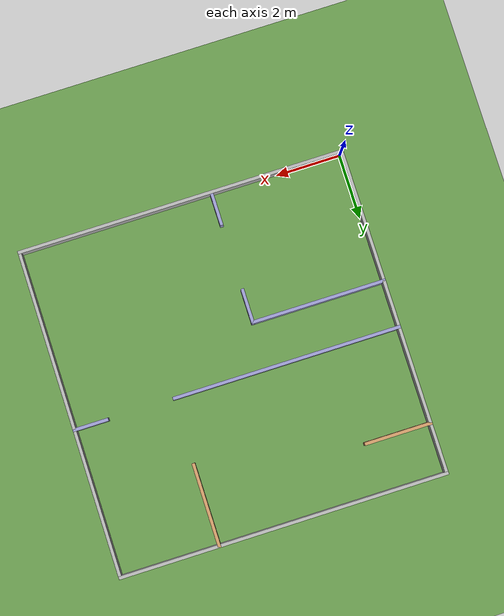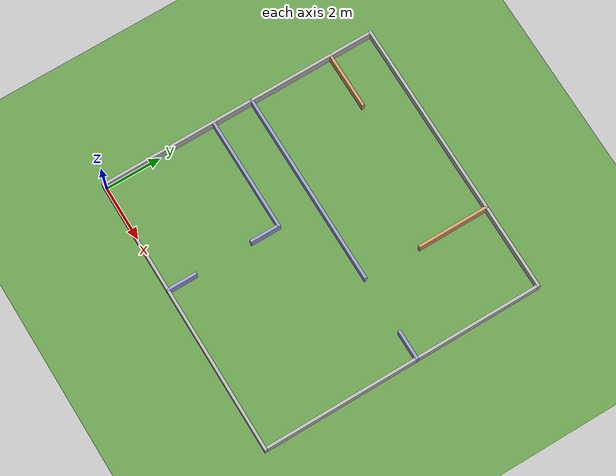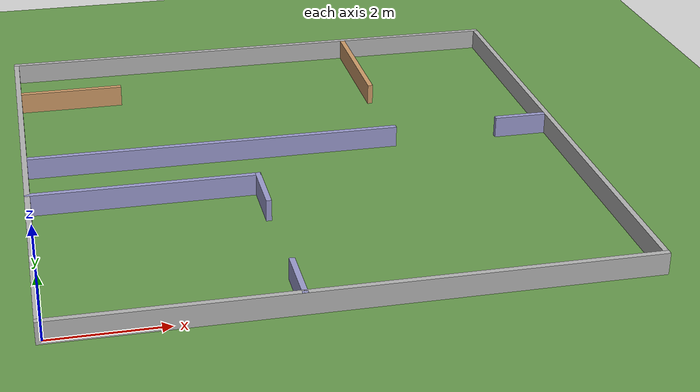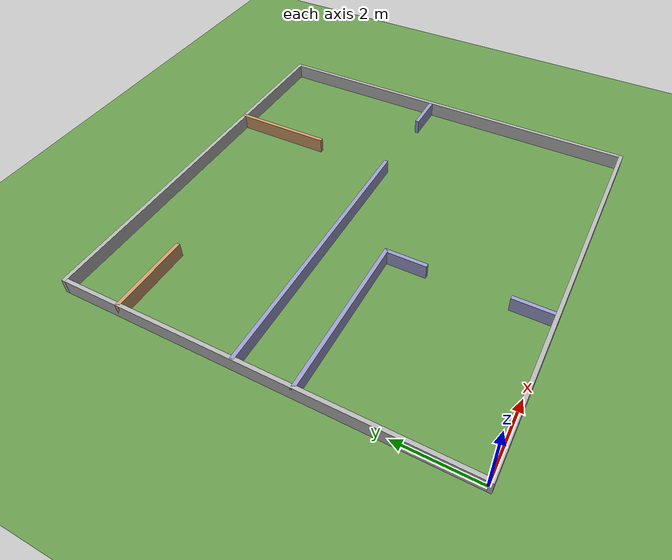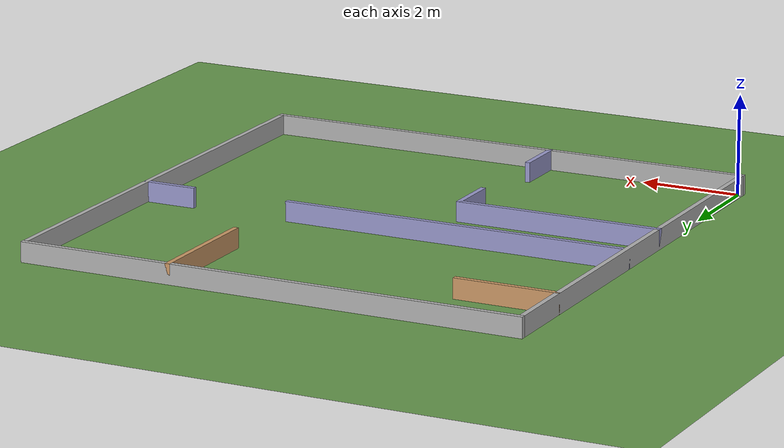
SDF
<?xml version="1.0" ?>
<sdf version="1.8">
  <world name="multi_room">

    <!-- See simple_room.world for the max_step_size / /clock rate rationale. -->
    <physics name="10ms" type="ignored">
      <max_step_size>0.01</max_step_size>
      <real_time_factor>1.0</real_time_factor>
    </physics>

    <plugin filename="gz-sim-physics-system"          name="gz::sim::systems::Physics"/>
    <plugin filename="gz-sim-sensors-system"           name="gz::sim::systems::Sensors">
      <render_engine>ogre2</render_engine>
    </plugin>
    <plugin filename="gz-sim-scene-broadcaster-system" name="gz::sim::systems::SceneBroadcaster"/>
    <plugin filename="gz-sim-user-commands-system"     name="gz::sim::systems::UserCommands"/>

    <light type="directional" name="sun">
      <cast_shadows>true</cast_shadows>
      <pose>5 5 5 0 0 0</pose>
      <diffuse>0.8 0.8 0.8 1</diffuse>
      <specular>0.2 0.2 0.2 1</specular>
      <attenuation>
        <range>100</range>
        <constant>0.9</constant>
        <linear>0.01</linear>
        <quadratic>0.001</quadratic>
      </attenuation>
      <direction>-0.5 0.1 -0.9</direction>
    </light>

    <model name="ground_plane">
      <static>true</static>
      <pose>5 5 0 0 0 0</pose>
      <link name="link">
        <collision name="collision">
          <geometry><plane><normal>0 0 1</normal><size>11 11</size></plane></geometry>
        </collision>
        <visual name="visual">
          <geometry><plane><normal>0 0 1</normal><size>11 11</size></plane></geometry>
          <material>
            <ambient>0.4 0.6 0.3 1</ambient>
            <diffuse>0.4 0.6 0.3 1</diffuse>
          </material>
        </visual>
      </link>
    </model>

    <!-- Outer boundary: 10x10 m, interior spans x:[0,10] y:[0,10].
         North/south walls get a 0.2 m overlap to close the corners. -->
    <model name="outer_south_wall">
      <static>true</static>
      <pose>5 -0.05 0.2 0 0 0</pose>
      <link name="link">
        <collision name="collision"><geometry><box><size>10.2 0.1 0.4</size></box></geometry></collision>
        <visual name="visual">
          <geometry><box><size>10.2 0.1 0.4</size></box></geometry>
          <material><ambient>0.7 0.7 0.7 1</ambient><diffuse>0.7 0.7 0.7 1</diffuse></material>
        </visual>
      </link>
    </model>

    <model name="outer_north_wall">
      <static>true</static>
      <pose>5 10.05 0.2 0 0 0</pose>
      <link name="link">
        <collision name="collision"><geometry><box><size>10.2 0.1 0.4</size></box></geometry></collision>
        <visual name="visual">
          <geometry><box><size>10.2 0.1 0.4</size></box></geometry>
          <material><ambient>0.7 0.7 0.7 1</ambient><diffuse>0.7 0.7 0.7 1</diffuse></material>
        </visual>
      </link>
    </model>

    <model name="outer_west_wall">
      <static>true</static>
      <pose>-0.05 5 0.2 0 0 0</pose>
      <link name="link">
        <collision name="collision"><geometry><box><size>0.1 10.0 0.4</size></box></geometry></collision>
        <visual name="visual">
          <geometry><box><size>0.1 10.0 0.4</size></box></geometry>
          <material><ambient>0.7 0.7 0.7 1</ambient><diffuse>0.7 0.7 0.7 1</diffuse></material>
        </visual>
      </link>
    </model>

    <model name="outer_east_wall">
      <static>true</static>
      <pose>10.05 5 0.2 0 0 0</pose>
      <link name="link">
        <collision name="collision"><geometry><box><size>0.1 10.0 0.4</size></box></geometry></collision>
        <visual name="visual">
          <geometry><box><size>0.1 10.0 0.4</size></box></geometry>
          <material><ambient>0.7 0.7 0.7 1</ambient><diffuse>0.7 0.7 0.7 1</diffuse></material>
        </visual>
      </link>
    </model>

    <model name="room_north_wall">
      <static>true</static>
      <pose>2.0 4.05 0.2 0 0 0</pose>
      <link name="link">
        <collision name="collision"><geometry><box><size>4.2 0.1 0.4</size></box></geometry></collision>
        <visual name="visual">
          <geometry><box><size>4.2 0.1 0.4</size></box></geometry>
          <material><ambient>0.6 0.6 0.8 1</ambient><diffuse>0.6 0.6 0.8 1</diffuse></material>
        </visual>
      </link>
    </model>

    <model name="room_east_wall_south">
      <static>true</static>
      <pose>4.05 0.45 0.2 0 0 0</pose>
      <link name="link">
        <collision name="collision"><geometry><box><size>0.1 1.1 0.4</size></box></geometry></collision>
        <visual name="visual">
          <geometry><box><size>0.1 1.1 0.4</size></box></geometry>
          <material><ambient>0.6 0.6 0.8 1</ambient><diffuse>0.6 0.6 0.8 1</diffuse></material>
        </visual>
      </link>
    </model>

    <model name="room_east_wall_north">
      <static>true</static>
      <pose>4.05 3.55 0.2 0 0 0</pose>
      <link name="link">
        <collision name="collision"><geometry><box><size>0.1 1.1 0.4</size></box></geometry></collision>
        <visual name="visual">
          <geometry><box><size>0.1 1.1 0.4</size></box></geometry>
          <material><ambient>0.6 0.6 0.8 1</ambient><diffuse>0.6 0.6 0.8 1</diffuse></material>
        </visual>
      </link>
    </model>

    <!-- Divider wall splitting the whole box into top/bottom areas at
         y=5.5, with a 2 m opening (x:7-9). -->
    <model name="divider_wall_left">
      <static>true</static>
      <pose>3.45 5.5 0.2 0 0 0</pose>
      <link name="link">
        <collision name="collision"><geometry><box><size>7.1 0.1 0.4</size></box></geometry></collision>
        <visual name="visual">
          <geometry><box><size>7.1 0.1 0.4</size></box></geometry>
          <material><ambient>0.6 0.6 0.8 1</ambient><diffuse>0.6 0.6 0.8 1</diffuse></material>
        </visual>
      </link>
    </model>

    <model name="divider_wall_right">
      <static>true</static>
      <pose>9.55 5.5 0.2 0 0 0</pose>
      <link name="link">
        <collision name="collision"><geometry><box><size>1.1 0.1 0.4</size></box></geometry></collision>
        <visual name="visual">
          <geometry><box><size>1.1 0.1 0.4</size></box></geometry>
          <material><ambient>0.6 0.6 0.8 1</ambient><diffuse>0.6 0.6 0.8 1</diffuse></material>
        </visual>
      </link>
    </model>

    <!-- Baffle: 2 m wall attached to the west outer wall at y=8.5,
         extending into the top area (x:0-2). -->
    <model name="baffle">
      <static>true</static>
      <pose>0.95 8.5 0.2 0 0 0</pose>
      <link name="link">
        <collision name="collision"><geometry><box><size>2.1 0.1 0.4</size></box></geometry></collision>
        <visual name="visual">
          <geometry><box><size>2.1 0.1 0.4</size></box></geometry>
          <material><ambient>0.8 0.6 0.4 1</ambient><diffuse>0.8 0.6 0.4 1</diffuse></material>
        </visual>
      </link>
    </model>

    <!-- Vertical wall hanging from the top (north) outer wall at x=7,
         down 2.5 m to y=7.5. -->
    <model name="top_right_vertical_wall">
      <static>true</static>
      <pose>7.0 8.8 0.2 0 0 0</pose>
      <link name="link">
        <collision name="collision"><geometry><box><size>0.1 2.6 0.4</size></box></geometry></collision>
        <visual name="visual">
          <geometry><box><size>0.1 2.6 0.4</size></box></geometry>
          <material><ambient>0.8 0.6 0.4 1</ambient><diffuse>0.8 0.6 0.4 1</diffuse></material>
        </visual>
      </link>
    </model>

  </world>
</sdf>
